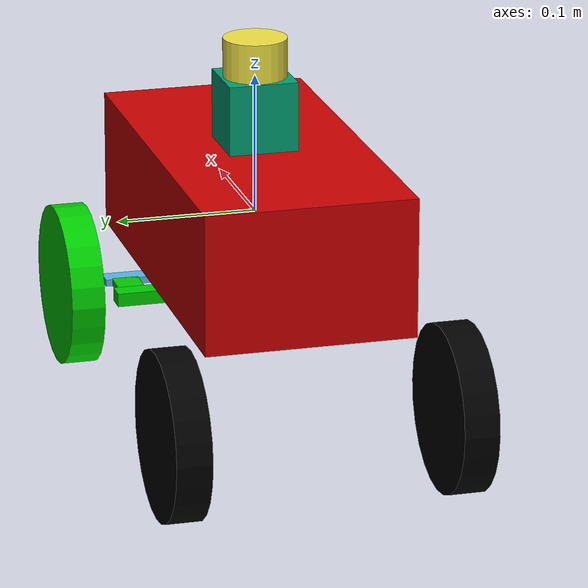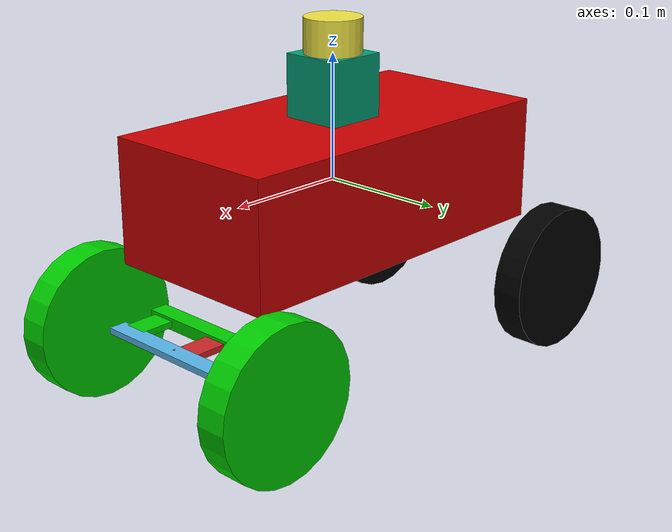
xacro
<?xml version="1.0"?>
<!-- Revolute-Revolute Manipulator -->
<robot name="audi" xmlns:xacro="http://www.ros.org/wiki/xacro">

  <!-- Constants for robot dimensions -->

  <!-- Physical Constant Macros -->
  <xacro:property name="M_PI" value="3.1415926535897931" />
  <!-- Dimension Macros -->
  <xacro:property name="carLength" value="0.3" />
  <xacro:property name="carWidth" value="0.15" />
  <xacro:property name="carHeight" value="0.1" />
  <xacro:property name="wheelRadius" value="0.06" />
  <xacro:property name="wheelWidth" value="0.025" />

  <!-- Import all Gazebo-customization elements, including Gazebo colors -->
  <xacro:include filename="$(find audi_description)/urdf/audi.gazebo" />
  <!-- Import Rviz colors -->
  <xacro:include filename="$(find audi_description)/urdf/materials.xacro" />

  <!-- Used for fixing robot to Gazebo 'base_link' -->

  <!-- Base Link -->
  <link name="base_link">
    <collision>
      <origin xyz="0 0 0" rpy="0 0 0" />
      <geometry>
        <box size="${carLength} ${carWidth} ${carHeight}" />
      </geometry>
    </collision>
    <visual>
      <origin xyz="0 0 0" rpy="0 0 0" />
      <geometry>
        <box size="${carLength} ${carWidth} ${carHeight}" />
      </geometry>
      <material name="red"/>
    </visual>
    <inertial>
      <mass value="0.2" />
      <origin xyz="0 0 0" />
      <inertia ixx="0.2" ixy="0.0" ixz="0.0" iyy="0.2" iyz="0.0" izz="0.2" />
    </inertial>
  </link>

  <joint name="front_joint" type="fixed">
    <parent link="base_link"/>
    <child link="front_link"/>
    <origin xyz="0.16 0.0 -0.1"/>
  </joint>

  <!-- Front link of Ackermann -->
  <link name="front_link">
    <collision>
      <geometry>
        <box size="${carLength*0.05} ${carWidth} ${carHeight*0.05}" />
      </geometry>
    </collision>
    <visual>
      <geometry>
        <box size="${carLength*0.05} ${carWidth} ${carHeight*0.05}" />
      </geometry>
      <material name="Aqua"/>
    </visual>
    <inertial>
      <mass value="0.01" />
      <origin xyz="0 0 0" />
      <inertia
        ixx="0.01" ixy="0.0" ixz="0.0"
        iyy="0.01" iyz="0.0"
        izz="0.01" />
    </inertial>
  </link>

  <!-- the left Ackermann bar -->
  <joint name="front_left_bar_joint" type="revolute" >
    <limit lower="-0.5" upper="0.5" effort="100" velocity="10" />
    <axis xyz="0 0 1" />
    <parent link="front_link" />
    <child link="front_left_bar_link" />
    <origin xyz="0.0 0.06 0.0" rpy="0 0 0" />
    <!--mimic joint="front_right_bar_joint" multiplier="1" /-->
  </joint>
  <link name="front_left_bar_link">
    <collision>
      <origin xyz="-0.02 0 0" />
      <geometry>
        <box size="${carLength*0.1} ${carWidth*0.133} ${carHeight*0.05}" />
      </geometry>
    </collision>
    <visual>
      <origin xyz="-0.02 0 0" />
      <geometry>
        <box size="${carLength*0.1} ${carWidth*0.133} ${carHeight*0.05}" />
      </geometry>
      <material name="green"/>
    </visual>
    <inertial>
      <mass value="0.01" />
      <origin xyz="0 0 0" />
      <inertia ixx="0.01" ixy="0.0" ixz="0.0" iyy="0.01" iyz="0.0" izz="0.01" />
    </inertial>
  </link>

  <!-- the right Ackermann bar -->
  <joint name="front_right_bar_joint" type="revolute" >
    <limit lower="-0.5" upper="0.5" effort="100" velocity="10" />
    <axis xyz="0 0 1" />
    <parent link="front_link" />
    <child link="front_right_bar_link" />
    <origin xyz="0.0 -0.06 0.0" rpy="0 0 0" />
  </joint>

  <link name="front_right_bar_link">
    <collision>
      <origin xyz="-0.02 0 0" />
      <geometry>
        <box size="${carLength*0.1} ${carWidth*0.133} ${carHeight*0.05}" />
      </geometry>
    </collision>
    <visual>
      <origin xyz="-0.02 0 0" />
      <geometry>
        <box size="${carLength*0.1} ${carWidth*0.133} ${carHeight*0.05}" />
      </geometry>
      <material name="green"/>
    </visual>
    <inertial>
      <mass value="0.01" />
      <origin xyz="0 0 0" />
      <inertia ixx="0.01" ixy="0.0" ixz="0.0" iyy="0.01" iyz="0.0" izz="0.01" />
    </inertial>
  </link>

  <!-- the front left wheel -->
  <joint name="front_left_wheel_joint" type="continuous" >
    <axis xyz="0 1 0" />
    <parent link="front_left_bar_link" />
    <child link="front_left_wheel_link" />
    <origin xyz="0 0.04 0" rpy="0 0 0" />
  </joint>

  <link name="front_left_wheel_link">
    <collision>
      <origin xyz="0 0 0" rpy="${M_PI/2} 0 0" />
      <geometry>
        <cylinder radius="${wheelRadius}" length="${wheelWidth}" />
      </geometry>
    </collision>
    <visual>
      <origin xyz="0 0 0" rpy="${M_PI/2} 0 0" />
      <geometry>
        <cylinder radius="${wheelRadius}" length="${wheelWidth}" />
      </geometry>
      <material name="green"/>
    </visual>
    <inertial>
      <mass value="0.01" />
      <origin xyz="0 0 0" />
      <inertia ixx="0.01" ixy="0.0" ixz="0.0" iyy="0.01" iyz="0.0" izz="0.01" />
    </inertial>
  </link>

  <!-- the front right wheel -->
  <joint name="front_right_wheel_joint" type="continuous" >
    <axis xyz="0 1 0" />
    <parent link="front_right_bar_link" />
    <child link="front_right_wheel_link" />
    <origin xyz="0 -0.04 0" rpy="0 0 0" />
  </joint>
  <link name="front_right_wheel_link">
    <collision>
      <origin xyz="0 0 0" rpy="${M_PI/2} 0 0" />
      <geometry>
        <cylinder radius="${wheelRadius}" length="${wheelWidth}" />
      </geometry>
    </collision>
    <visual>
      <origin xyz="0 0 0" rpy="${M_PI/2} 0 0" />
      <geometry>
        <cylinder radius="${wheelRadius}" length="${wheelWidth}" />
      </geometry>
      <material name="green"/>
    </visual>
    <inertial>
      <mass value="0.01" />
      <origin xyz="0 0 0" />
      <inertia ixx="0.01" ixy="0.0" ixz="0.0" iyy="0.01" iyz="0.0" izz="0.01" />
    </inertial>
  </link>

  <!-- a link aligned with the steer direction -->
  <joint name="steer_joint" type="revolute" >
    <limit lower="-0.5" upper="0.5" effort="100" velocity="10" />
    <axis xyz="0 0 1" />
    <parent link="front_link" />
    <child link="steer_link" />
    <origin xyz="0.0 0.0 0.0" rpy="0 0 0" />
  </joint>
  <link name="steer_link">
    <inertial>
      <mass value="0.01" />
      <origin xyz="0 0 0" />
      <inertia ixx="0.01" ixy="0.0" ixz="0.0" iyy="0.01" iyz="0.0" izz="0.01" />
    </inertial>
    <visual>
      <origin xyz="-0.02 0 0" />
      <geometry>
      <box size="0.04 0.02 0.005" />
      </geometry>
      <material name="Red"/>
    </visual>
    <collision>
      <origin xyz="0.02 0 0" />
      <geometry>
      <box size="0.04 0.02 0.005" />
      </geometry>
    </collision>
  </link>

  <!-- the Ackerman bar -->
  <!-- Ackermann plugin -->
  <joint name="ackermann_joint" type="revolute" >
    <limit lower="-0.5" upper="0.5" effort="100" velocity="10" />
    <axis xyz="0 0 1" />
    <parent link="steer_link" />
    <child link="ackermann_bar_link" />
    <origin xyz="-0.04 0 0" rpy="0 0 0" />
  </joint>

  <link name="ackermann_bar_link">
    <inertial>
      <mass value="0.01" />
      <origin xyz="0 0 0" />
      <inertia ixx="0.01" ixy="0.0" ixz="0.0" iyy="0.01" iyz="0.0" izz="0.01" />
    </inertial>
    <visual>
      <geometry>
        <box size="${carLength*0.05} ${carWidth} ${carHeight*0.1}" />
      </geometry>
    <material name="green"/>
    </visual>
    <collision>
      <geometry>
        <box size="${carLength*0.05} ${carWidth} ${carHeight*0.1}" />
      </geometry>
    </collision>
  </link>

  <!-- the back left wheel -->
  <joint name="back_left_wheel_joint" type="continuous" >
    <axis xyz="0 1 0" />
    <parent link="base_link" />
    <child link="back_left_wheel_link" />
    <origin xyz="-0.16 0.1 -0.1" rpy="0 0 0" />
  </joint>
  <link name="back_left_wheel_link">
    <inertial>
      <mass value="0.01" />
      <origin xyz="0 0 0" />
      <inertia ixx="0.01" ixy="0.0" ixz="0.0" iyy="0.01" iyz="0.0" izz="0.01" />
    </inertial>
    <visual>
      <origin xyz="0 0 0" rpy="${M_PI/2} 0 0" />
      <geometry>
        <cylinder radius="${wheelRadius}" length="${wheelWidth}" />
      </geometry>
      <material name="black"/>
    </visual>
    <collision>
      <origin xyz="0 0 0" rpy="${M_PI/2} 0 0" />
      <geometry>
        <cylinder radius="${wheelRadius}" length="${wheelWidth}" />
      </geometry>
    </collision>
  </link>
  <!-- the back right wheel -->
  <joint name="back_right_wheel_joint" type="continuous" >
    <axis xyz="0 1 0" />
    <parent link="base_link" />
    <child link="back_right_wheel_link" />
    <origin xyz="-0.16 -0.1 -0.1" rpy="0 0 0" />
  </joint>

  <link name="back_right_wheel_link">
    <inertial>
      <mass value="0.01" />
      <origin xyz="0 0 0" />
      <inertia ixx="0.01" ixy="0.0" ixz="0.0" iyy="0.01" iyz="0.0" izz="0.01" />
    </inertial>
    <visual>
      <origin xyz="0 0 0" rpy="${M_PI/2} 0 0" />
      <geometry>
        <cylinder radius="${wheelRadius}" length="${wheelWidth}" />
      </geometry>
      <material name="black"/>
    </visual>
    <collision>
      <origin xyz="0 0 0" rpy="${M_PI/2} 0 0" />
      <geometry>
        <cylinder radius="${wheelRadius}" length="${wheelWidth}" />
      </geometry>
      </collision>
  </link>

  <!-- laser plugin -->
  <joint name="laser_base_mount_joint" type="fixed">
    <origin xyz="0 0 0.05" rpy="0 0 0" />
    <parent link="base_link"/>
    <child link="laser_base_link"/>
  </joint>

  <link name="laser_base_link" type="fixed">
    <inertial>
      <mass value="0.1"/>
      <origin xyz="0 0 0.0"/>
      <inertia ixx="0.1" ixy="0" ixz="0" iyy="0.1" iyz="0" izz="0.1"/>
    </inertial>
    <visual>
      <origin rpy="0 0 0" xyz="0 0 0.025"/>
      <geometry>
        <box size="0.05 0.05 0.05"/>
      </geometry>
    </visual>
    <collision>
      <origin rpy="0 0 0" xyz="0 0 0.025"/>
      <geometry>
        <box size="0.05 0.05 0.05"/>
      </geometry>
    </collision>
  </link>

  <joint name="base_scan_joint" type="fixed" >
    <origin xyz="0 0 0.05" rpy="0 0 0" />
    <parent link="laser_base_link" />
    <child link="base_scan_link"/>
  </joint>
  <link name="base_scan_link" type="laser">
    <inertial>
      <mass value="0.1"/>
      <origin xyz="0 0 0.0"/>
      <inertia ixx="0.1" ixy="0" ixz="0" iyy="0.1" iyz="0" izz="0.1"/>
    </inertial>
    <visual>
      <origin rpy="0 0 0" xyz="0 0 0.014"/>
      <geometry>
        <cylinder radius="0.0229" length="0.028"/>
      </geometry>
    </visual>
    <collision>
      <origin rpy="0 0 0" xyz="0 0 0.014"/>
      <geometry>
        <cylinder radius="0.0229" length="0.028"/>
      </geometry>
    </collision>
  </link>

   <!-- Adding loop joints -->
    <!-- Gazebo Ackermann loop joints -->

  <transmission name="tran1">
    <type>transmission_interface/SimpleTransmission</type>
    <joint name="steer_joint">
      <hardwareInterface>EffortJointInterface</hardwareInterface>
    </joint>
    <actuator name="motor1">
      <mechanicalReduction>1</mechanicalReduction>
    </actuator>
  </transmission>

</robot>

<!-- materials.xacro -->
<robot>

  <material name="black">
    <color rgba="0.0 0.0 0.0 1.0"/>
  </material>

  <material name="blue">
    <color rgba="0.0 0.0 0.8 1.0"/>
  </material>

  <material name="green">
    <color rgba="0.0 0.8 0.0 1.0"/>
  </material>

  <material name="grey">
    <color rgba="0.2 0.2 0.2 1.0"/>
  </material>

  <material name="orange">
    <color rgba="${255/255} ${108/255} ${10/255} 1.0"/>
  </material>

  <material name="brown">
    <color rgba="${222/255} ${207/255} ${195/255} 1.0"/>
  </material>

  <material name="red">
    <color rgba="0.8 0.0 0.0 1.0"/>
  </material>

  <material name="white">
    <color rgba="1.0 1.0 1.0 1.0"/>
  </material>

  <material name="aqua">
    <color rgba="0 255 255 1.0"/>
  </material>

</robot>
